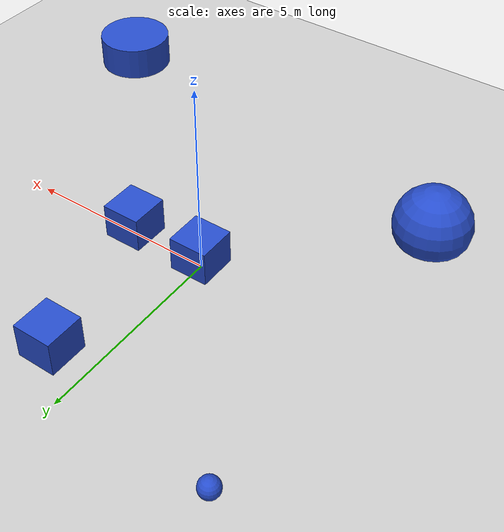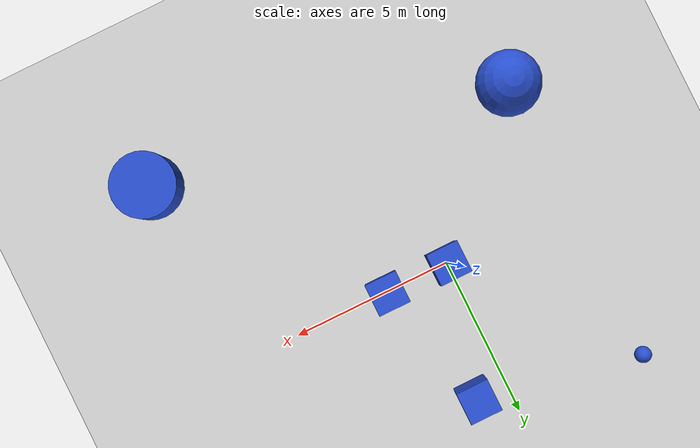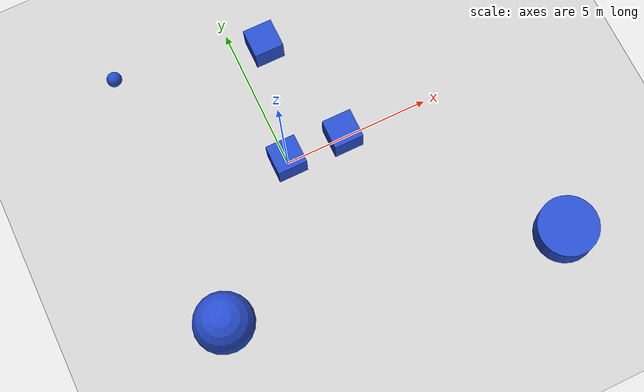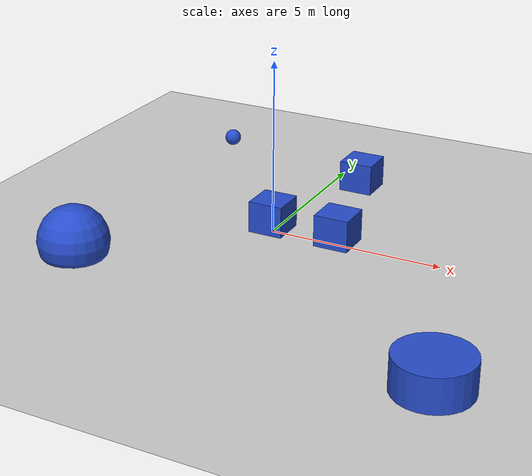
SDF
<?xml version="1.0" ?>

<sdf version="1.5">
  <world name="default">

    <include>
      <uri>model://ground_plane</uri>
    </include>

    <light type="point" name="point">
      <cast_shadows>true</cast_shadows>
      <pose>0.0 0.0 3.0 0 0 0</pose>
      <diffuse>0.8 0.8 0.8 1</diffuse>
      <specular>0.2 0.2 0.2 1</specular>
      <attenuation>
        <range>25</range>
        <constant>0.05</constant>
        <linear>0.01</linear>
        <quadratic>0.001</quadratic>
      </attenuation>
      <cast_shadows>true</cast_shadows>
    </light>

     <model name="ground_shadow_receiver_1">
      <pose>0 0 0.1 0 0 0</pose>
      <static>true</static>
      <link name="link">
        <collision name="collision">
          <geometry>
            <plane>
              <normal>0 0 1</normal>
              <size>25 25</size>
            </plane>
          </geometry>
          <surface>
            <contact>
               <collide_bitmask>0xffff</collide_bitmask>
            </contact>
            <friction>
              <ode>
                <mu>100</mu>
                <mu2>50</mu2>
              </ode>
            </friction>
          </surface>
        </collision>
        <visual name="visual">
          <cast_shadows>false</cast_shadows>
          <geometry>
            <plane>
              <normal>0 0 1</normal>
              <size>25 25</size>
            </plane>
          </geometry>
          <material>
            <script>
              <uri>file://media/materials/scripts/point_light_shadow_demo.material</uri>
              <name>Gazebo/PointLightShadowDemo</name>
            </script>
          </material>
        </visual>
      </link>
    </model>

    <model name="box_0">
      <pose>0 0 0.5 0 0 0</pose>
      <link name="link">
        <collision name="collision">
          <geometry>
            <box>
              <size>1 1 1</size>
            </box>
          </geometry>
        </collision>
        <visual name="visual">
          <geometry>
            <box>
              <size>1 1 1</size>
            </box>
          </geometry>
          <material>
            <script><name>Gazebo/Blue</name></script>
          </material>
        </visual>
      </link>
    </model>

    <model name="box_1">
      <pose>2 0 0.5 0 0 0</pose>
      <link name="link">
        <collision name="collision">
          <geometry>
            <box>
              <size>1 1 1</size>
            </box>
          </geometry>
        </collision>
        <visual name="visual">
          <geometry>
            <box>
              <size>1 1 1</size>
            </box>
          </geometry>
          <material>
            <script><name>Gazebo/Blue</name></script>
          </material>
        </visual>
      </link>
    </model>

    <model name="box_2">
      <pose>1 4 0.5 0 0 0</pose>
      <link name="link">
        <collision name="collision">
          <geometry>
            <box>
              <size>1 1 1</size>
            </box>
          </geometry>
        </collision>
        <visual name="visual">
          <geometry>
            <box>
              <size>1 1 1</size>
            </box>
          </geometry>
          <material>
            <script><name>Gazebo/Blue</name></script>
          </material>
        </visual>
      </link>
    </model>

    <model name="sphere_0">
      <pose>-4 -4 0.5 0 0 0</pose>
      <link name="link">
        <collision name="collision">
          <geometry>
            <sphere>
              <radius>1</radius>
            </sphere>
          </geometry>
        </collision>
        <visual name="visual">
          <geometry>
            <sphere>
              <radius>1</radius>
            </sphere>
          </geometry>
          <material>
            <script><name>Gazebo/Blue</name></script>
          </material>
        </visual>
      </link>
    </model>

    <model name="sphere_1">
      <pose>-4 5 0.5 0 0 0</pose>
      <link name="link">
        <collision name="collision">
          <geometry>
            <sphere>
              <radius>0.25</radius>
            </sphere>
          </geometry>
        </collision>
        <visual name="visual">
          <geometry>
            <sphere>
              <radius>0.25</radius>
            </sphere>
          </geometry>
          <material>
            <script><name>Gazebo/Blue</name></script>
          </material>
        </visual>
      </link>
    </model>

    <model name="cylinder_0">
      <pose>7 -6 0.5 0 0 0</pose>
      <link name="link">
        <collision name="collision">
          <geometry>
            <cylinder>
              <radius>1</radius>
              <length>1</length>
            </cylinder>
          </geometry>
        </collision>
        <visual name="visual">
          <geometry>
            <cylinder>
              <radius>1</radius>
              <length>1</length>
            </cylinder>
          </geometry>
          <material>
            <script><name>Gazebo/Blue</name></script>
          </material>
        </visual>
      </link>
    </model>

  </world>
</sdf>
